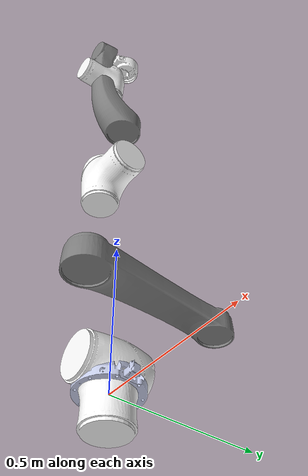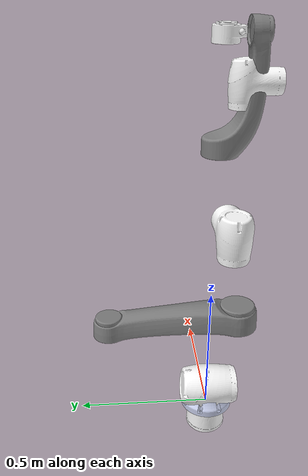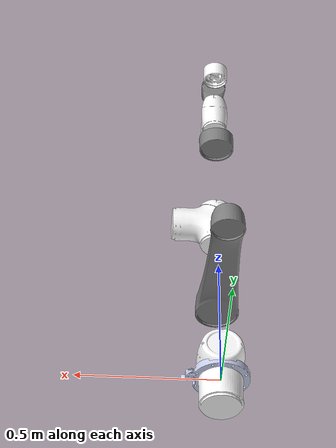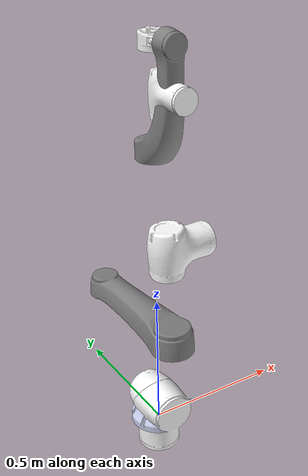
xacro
<?xml version="1.0"?>

<robot name="elfin10" xmlns:xacro="http://wiki.ros.org/xacro">

  <xacro:arg name="use_real_hardware" default="true" />
  <xacro:arg name="use_fake_hardware" default="false" />

  <!-- Load TRANSMISSION file: -->
  <xacro:include filename="$(find elfin10_ros2_gazebo)/urdf/elfin10_transmission.xacro" />
  <!-- Load GAZEBO/ROS2_CONTROL file: -->
  <xacro:include filename="$(find elfin10_ros2_gazebo)/urdf/elfin10_gazebo.xacro" />

  <xacro:property name="PI" value="3.1415926535897931"/>

  <xacro:property name="density" value="3.09"/>

    <!-- TRANSMISSION: -->
    <xacro:elfin10_transmission />
    <!-- GAZEBO - ROS2_CONTROL: -->
    <xacro:elfin10_gazebo
    use_real_hardware="$(arg use_real_hardware)"
    use_fake_hardware="$(arg use_fake_hardware)"/>

   <link name="world"/>

  <joint name="world_base" type="fixed">
    <origin
      xyz="0 0 0"
      rpy="0 0 -1.5708" />
    <parent
      link="world" />
    <child
      link="elfin_base_link" />
  </joint>

   <link name="elfin_base_link"/>

  <joint name="elfin_base_joint" type="fixed">
    <origin
      xyz="0 0 0"
      rpy="0 0 ${PI/2}" />
    <parent
      link="elfin_base_link" />
    <child
      link="elfin_base" />
  </joint>

 <link
    name="elfin_base">
    <inertial>
      <origin
        xyz="-0.00272891148525253 0.000307855470977014 0.0272857003429058"
        rpy="0 0 0" />
      <mass
        value="0.885322892252566" />
      <inertia
        ixx="0.00301072999783137"
        ixy="-1.61177742996604E-05"
        ixz="-3.9001744857601E-05"
        iyy="0.0026859684784965"
        iyz="3.74127558541537E-06"
        izz="0.00520484836475965" />
    </inertial>
    <visual>
      <origin
        xyz="0 0 0"
        rpy="0 0 0" />
      <geometry>
        <mesh
          filename="file://$(find elfin_description)/meshes/elfin10/elfin_base_link.STL" />
      </geometry>
      <material
        name="">
        <color
          rgba="0.792156862745098 0.819607843137255 0.929411764705882 1" />
      </material>
    </visual>
    <collision>
      <origin
        xyz="0 0 0"
        rpy="0 0 0" />
      <geometry>
        <mesh
          filename="file://$(find elfin_description)/meshes/elfin10/elfin_base_link.STL" />
      </geometry>
    </collision>
  </link>
  <link
    name="elfin_link1">
    <inertial>
      <origin
        xyz="1.64450419081555E-05 -0.0256037445106889 0.116231470679274"
        rpy="0 0 0" />
      <mass
        value="5.06676664437865" />
      <inertia
        ixx="0.0432021422624639"
        ixy="-5.87315615826586E-06"
        ixz="-3.3817285662756E-06"
        iyy="0.0389769463442445"
        iyz="0.00975755293023606"
        izz="0.0198084067505502" />
    </inertial>
    <visual>
      <origin
        xyz="0 0 0"
        rpy="0 0 0" />
      <geometry>
        <mesh
          filename="file://$(find elfin_description)/meshes/elfin10/elfin_link1.STL" />
      </geometry>
      <material
        name="">
        <color
          rgba="1 1 1 1" />
      </material>
    </visual>
    <collision>
      <origin
        xyz="0 0 0"
        rpy="0 0 0" />
      <geometry>
        <mesh
          filename="file://$(find elfin_description)/meshes/elfin10/elfin_link1.STL" />
      </geometry>
    </collision>
  </link>
  <joint
    name="elfin_joint1"
    type="revolute">
    <origin
      xyz="0 0 0.0794"
      rpy="0 0 0" />
    <parent
      link="elfin_base" />
    <child
      link="elfin_link1" />
    <axis
      xyz="0 0 1" />
    <limit
      lower="-3.14"
      upper="3.14"
      effort="104"
      velocity="1.57" />
  </joint>
  <link
    name="elfin_link2">
    <inertial>
      <origin
        xyz="6.76058799303212E-06 -0.042999875819422 0.209938025941438"
        rpy="0 0 0" />
      <mass
        value="1.67177851395468" />
      <inertia
        ixx="0.0439485446845192"
        ixy="-4.52807636811865E-07"
        ixz="-7.43339382852812E-06"
        iyy="0.0454864353408678"
        iyz="-0.0016627192868139"
        izz="0.00419718886154138" />
    </inertial>
    <visual>
      <origin
        xyz="0 0 0"
        rpy="0 0 0" />
      <geometry>
        <mesh
          filename="file://$(find elfin_description)/meshes/elfin10/elfin_link2.STL" />
      </geometry>
      <material
        name="">
        <color
          rgba="0.501960784313725 0.501960784313725 0.501960784313725 1" />
      </material>
    </visual>
    <collision>
      <origin
        xyz="0 0 0"
        rpy="0 0 0" />
      <geometry>
        <mesh
          filename="file://$(find elfin_description)/meshes/elfin10/elfin_link2.STL" />
      </geometry>
    </collision>
  </link>
  <joint
    name="elfin_joint2"
    type="revolute">
    <origin
      xyz="0 -0.1006 0.1806"
      rpy="0 0 0" />
    <parent
      link="elfin_link1" />
    <child
      link="elfin_link2" />
    <axis
      xyz="0 -1 0" />
    <limit
      lower="-2.35"
      upper="2.35"
      effort="104"
      velocity="1.57" />
  </joint>
  <link
    name="elfin_link3">
    <inertial>
      <origin
        xyz="-2.62996059291557E-05 0.0490394097580479 0.052175062906049"
        rpy="0 0 0" />
      <mass
        value="2.52843012692852" />
      <inertia
        ixx="0.0139637252708319"
        ixy="2.19112531145417E-06"
        ixz="-3.30099393077099E-06"
        iyy="0.0122350897234042"
        iyz="-0.00342609019238153"
        izz="0.00648764255835148" />
    </inertial>
    <visual>
      <origin
        xyz="0 0 0"
        rpy="0 0 0" />
      <geometry>
        <mesh
          filename="file://$(find elfin_description)/meshes/elfin10/elfin_link3.STL" />
      </geometry>
      <material
        name="">
        <color
          rgba="1 1 1 1" />
      </material>
    </visual>
    <collision>
      <origin
        xyz="0 0 0"
        rpy="0 0 0" />
      <geometry>
        <mesh
          filename="file://$(find elfin_description)/meshes/elfin10/elfin_link3.STL" />
      </geometry>
    </collision>
  </link>
  <joint
    name="elfin_joint3"
    type="revolute">
    <origin
      xyz="0 0.0296 0.48"
      rpy="0 0 0" />
    <parent
      link="elfin_link2" />
    <child
      link="elfin_link3" />
    <axis
      xyz="0 1 0" />
    <limit
      lower="-2.61"
      upper="2.61"
      effort="69"
      velocity="1.57" />
  </joint>
  <link
    name="elfin_link4">
    <inertial>
      <origin
        xyz="7.16230692529086E-06 -0.0655290443401757 0.159896102785824"
        rpy="0 0 0" />
      <mass
        value="0.77472632829127" />
      <inertia
        ixx="0.0123453730002939"
        ixy="5.3931985013663E-08"
        ixz="6.96327319489119E-07"
        iyy="0.0114525775167076"
        iyz="0.00266638141144531"
        izz="0.00252781952691956" />
    </inertial>
    <visual>
      <origin
        xyz="0 0 0"
        rpy="0 0 0" />
      <geometry>
        <mesh
          filename="file://$(find elfin_description)/meshes/elfin10/elfin_link4.STL" />
      </geometry>
      <material
        name="">
        <color
          rgba="0.501960784313725 0.501960784313725 0.501960784313725 1" />
      </material>
    </visual>
    <collision>
      <origin
        xyz="0 0 0"
        rpy="0 0 0" />
      <geometry>
        <mesh
          filename="file://$(find elfin_description)/meshes/elfin10/elfin_link4.STL" />
      </geometry>
    </collision>
  </link>
  <joint
    name="elfin_joint4"
    type="revolute">
    <origin
      xyz="0 0.071 0.145"
      rpy="0 0 0" />
    <parent
      link="elfin_link3" />
    <child
      link="elfin_link4" />
    <axis
      xyz="0 0 1" />
    <limit
      lower="-3.14"
      upper="3.14"
      effort="69"
      velocity="1.57" />
  </joint>
  <link
    name="elfin_link5">
    <inertial>
      <origin
        xyz="7.94801868796714E-06 0.0434911461018785 0.0377663456063138"
        rpy="0 0 0" />
      <mass
        value="1.07924103919594" />
      <inertia
        ixx="0.0034729009457966"
        ixy="-5.52196757851043E-07"
        ixz="-1.81605217014424E-07"
        iyy="0.00288839322873982"
        iyz="-0.00085933122800016"
        izz="0.00165138766321844" />
    </inertial>
    <visual>
      <origin
        xyz="0 0 0"
        rpy="0 0 0" />
      <geometry>
        <mesh
          filename="file://$(find elfin_description)/meshes/elfin10/elfin_link5.STL" />
      </geometry>
      <material
        name="">
        <color
          rgba="1 1 1 1" />
      </material>
    </visual>
    <collision>
      <origin
        xyz="0 0 0"
        rpy="0 0 0" />
      <geometry>
        <mesh
          filename="file://$(find elfin_description)/meshes/elfin10/elfin_link5.STL" />
      </geometry>
    </collision>
  </link>
  <joint
    name="elfin_joint5"
    type="revolute">
    <origin
      xyz="0 -0.061 0.375"
      rpy="0 0 0" />
    <parent
      link="elfin_link4" />
    <child
      link="elfin_link5" />
    <axis
      xyz="0 1 0" />
    <limit
      lower="-2.56"
      upper="2.56"
      effort="34"
      velocity="1.57" />
  </joint>
  <link
    name="elfin_link6">
    <inertial>
      <origin
        xyz="-9.26612634280175E-05 -0.0081738605677491 0.0354638117456494"
        rpy="0 0 0" />
      <mass
        value="0.119882706389467" />
      <inertia
        ixx="8.35693202355099E-05"
        ixy="-2.08449849387281E-07"
        ixz="-1.2465765267456E-09"
        iyy="8.12022606285257E-05"
        iyz="-2.22337351477352E-06"
        izz="0.0001400999122568" />
    </inertial>
    <visual>
      <origin
        xyz="0 0 0"
        rpy="0 0 0" />
      <geometry>
        <mesh
          filename="file://$(find elfin_description)/meshes/elfin10/elfin_link6.STL" />
      </geometry>
      <material
        name="">
        <color
          rgba="1 1 1 1" />
      </material>
    </visual>
    <collision>
      <origin
        xyz="0 0 0"
        rpy="0 0 0" />
      <geometry>
        <mesh
          filename="file://$(find elfin_description)/meshes/elfin10/elfin_link6.STL" />
      </geometry>
    </collision>
  </link>
  <joint
    name="elfin_joint6"
    type="revolute">
    <origin
      xyz="0 0.061 0.109"
      rpy="0 0 0" />
    <parent
      link="elfin_link5" />
    <child
      link="elfin_link6" />
    <axis
      xyz="0 0 1" />
    <limit
      lower="-3.14"
      upper="3.14"
      effort="34"
      velocity="1.57" />
  </joint>

   <link name="elfin_end_link"/>

  <joint
    name="elfin_end_joint"
    type="fixed">
    <origin
      xyz="0 0 0.059"
      rpy="0 0 0" />
    <parent
      link="elfin_link6" />
    <child
      link="elfin_end_link" />
  </joint>

  <link name="elfin_dummy_gripper"/>

  <joint name="elfin_dummy_joint" type="fixed">
    <origin
      xyz="0 0.109 0"
      rpy="${-PI/2} ${-PI/2} 0" />
    <parent
      link="elfin_link6" />
    <child
      link="elfin_dummy_gripper" />
  </joint>

</robot>
